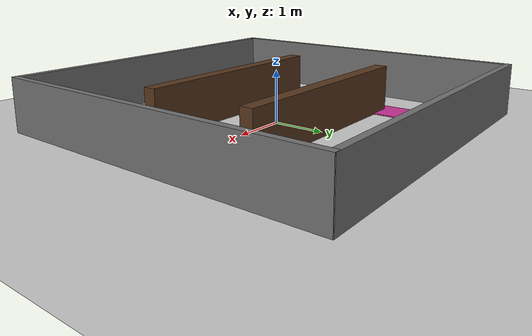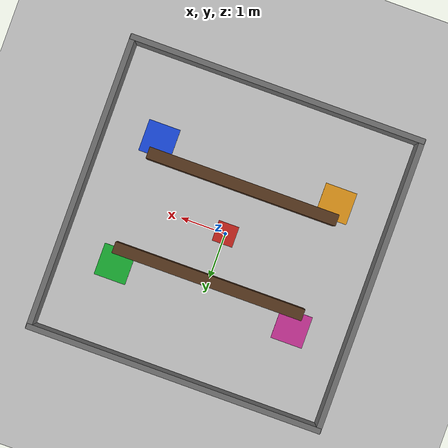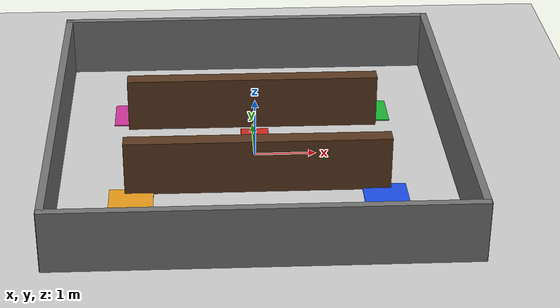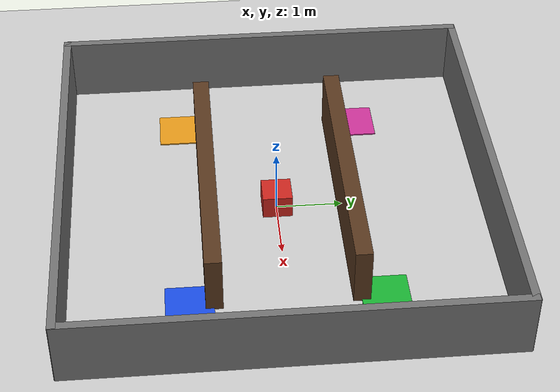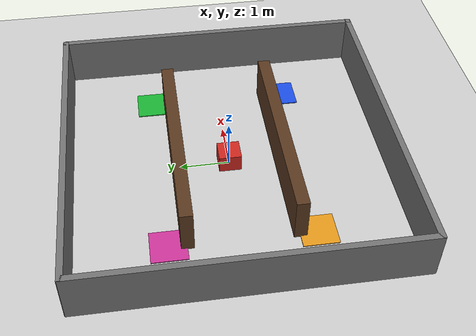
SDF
<?xml version="1.0"?>
<sdf version="1.6">
  <world name="warehouse_inventory_world">
    <include>
      <uri>model://sun</uri>
    </include>
    <include>
      <uri>model://ground_plane</uri>
    </include>

    <model name="warehouse_outer_walls">
      <static>true</static>
      <link name="walls">
        <collision name="north">
          <pose>0 3.2 0.5 0 0 0</pose>
          <geometry><box><size>6.5 0.12 1.0</size></box></geometry>
        </collision>
        <visual name="north_visual">
          <pose>0 3.2 0.5 0 0 0</pose>
          <geometry><box><size>6.5 0.12 1.0</size></box></geometry>
          <material><ambient>0.45 0.45 0.45 1</ambient></material>
        </visual>
        <collision name="south">
          <pose>0 -3.2 0.5 0 0 0</pose>
          <geometry><box><size>6.5 0.12 1.0</size></box></geometry>
        </collision>
        <visual name="south_visual">
          <pose>0 -3.2 0.5 0 0 0</pose>
          <geometry><box><size>6.5 0.12 1.0</size></box></geometry>
          <material><ambient>0.45 0.45 0.45 1</ambient></material>
        </visual>
        <collision name="east">
          <pose>3.2 0 0.5 0 0 0</pose>
          <geometry><box><size>0.12 6.5 1.0</size></box></geometry>
        </collision>
        <visual name="east_visual">
          <pose>3.2 0 0.5 0 0 0</pose>
          <geometry><box><size>0.12 6.5 1.0</size></box></geometry>
          <material><ambient>0.45 0.45 0.45 1</ambient></material>
        </visual>
        <collision name="west">
          <pose>-3.2 0 0.5 0 0 0</pose>
          <geometry><box><size>0.12 6.5 1.0</size></box></geometry>
        </collision>
        <visual name="west_visual">
          <pose>-3.2 0 0.5 0 0 0</pose>
          <geometry><box><size>0.12 6.5 1.0</size></box></geometry>
          <material><ambient>0.45 0.45 0.45 1</ambient></material>
        </visual>
      </link>
    </model>

    <model name="rack_row_1">
      <static>true</static>
      <pose>0 1.05 0.45 0 0 0</pose>
      <link name="rack">
        <collision name="collision"><geometry><box><size>4.2 0.25 0.9</size></box></geometry></collision>
        <visual name="visual">
          <geometry><box><size>4.2 0.25 0.9</size></box></geometry>
          <material><ambient>0.35 0.22 0.12 1</ambient></material>
        </visual>
      </link>
    </model>

    <model name="rack_row_2">
      <static>true</static>
      <pose>0 -1.05 0.45 0 0 0</pose>
      <link name="rack">
        <collision name="collision"><geometry><box><size>4.2 0.25 0.9</size></box></geometry></collision>
        <visual name="visual">
          <geometry><box><size>4.2 0.25 0.9</size></box></geometry>
          <material><ambient>0.35 0.22 0.12 1</ambient></material>
        </visual>
      </link>
    </model>

    <model name="small_obstacle">
      <static>true</static>
      <pose>0.0 0.0 0.18 0 0 0</pose>
      <link name="box">
        <collision name="collision"><geometry><box><size>0.45 0.45 0.36</size></box></geometry></collision>
        <visual name="visual">
          <geometry><box><size>0.45 0.45 0.36</size></box></geometry>
          <material><ambient>0.8 0.15 0.12 1</ambient></material>
        </visual>
      </link>
    </model>

    <model name="inventory_zone_A1">
      <static>true</static>
      <pose>2.0 1.4 0.01 0 0 0</pose>
      <link name="zone">
        <visual name="visual">
          <geometry><box><size>0.7 0.7 0.02</size></box></geometry>
          <material><ambient>0.1 0.7 0.2 1</ambient></material>
        </visual>
      </link>
    </model>

    <model name="inventory_zone_B2">
      <static>true</static>
      <pose>2.0 -1.4 0.01 0 0 0</pose>
      <link name="zone">
        <visual name="visual">
          <geometry><box><size>0.7 0.7 0.02</size></box></geometry>
          <material><ambient>0.1 0.3 0.9 1</ambient></material>
        </visual>
      </link>
    </model>

    <model name="inventory_zone_C3">
      <static>true</static>
      <pose>-2.0 -1.4 0.01 0 0 0</pose>
      <link name="zone">
        <visual name="visual">
          <geometry><box><size>0.7 0.7 0.02</size></box></geometry>
          <material><ambient>0.9 0.6 0.1 1</ambient></material>
        </visual>
      </link>
    </model>

    <model name="inventory_zone_D4">
      <static>true</static>
      <pose>-2.0 1.4 0.01 0 0 0</pose>
      <link name="zone">
        <visual name="visual">
          <geometry><box><size>0.7 0.7 0.02</size></box></geometry>
          <material><ambient>0.8 0.2 0.6 1</ambient></material>
        </visual>
      </link>
    </model>
  </world>
</sdf>
